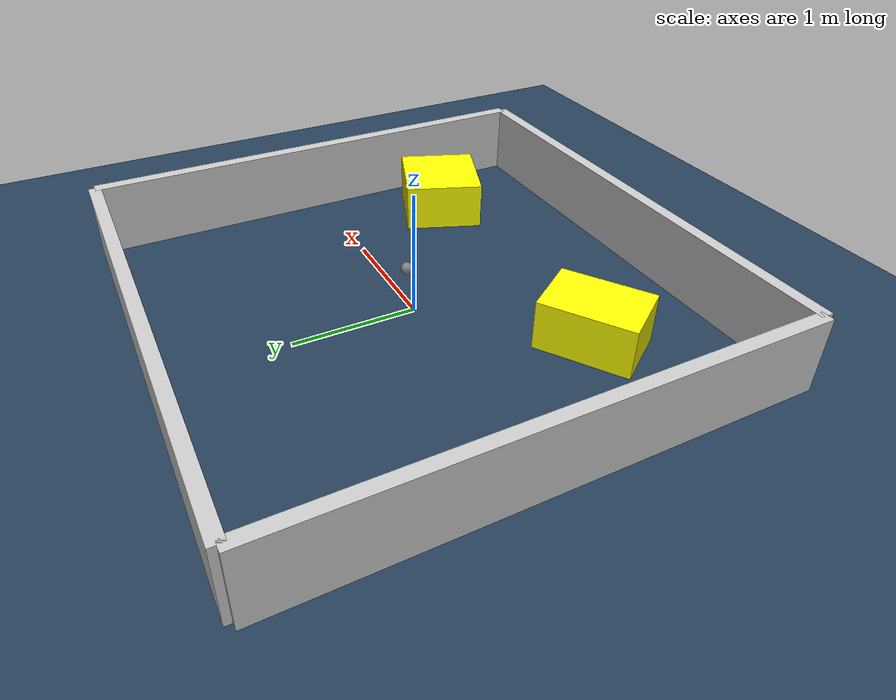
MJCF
<?xml version="1.0" ?>
<mujoco model="generated_environment">
  <option timestep="0.01" integrator="RK4" cone="elliptic"/>
  <default>
    <geom density="1"/>
  </default>
  <asset>
    <texture builtin="gradient" height="3072" rgb1="0.3 0.5 0.7" rgb2="0 0 0" type="skybox" width="512"/>
    <texture builtin="checker" height="300" mark="edge" markrgb="0.8 0.8 0.8" name="groundplane" rgb1="0.2 0.3 0.4" rgb2="0.1 0.2 0.3" type="2d" width="300"/>
    <material name="groundplane" reflectance="0.2" texrepeat="5 5" texture="groundplane" texuniform="true"/>
    <material name="robot" rgba="0.0 1.0 0.0 1"/>
  </asset>
  <worldbody>
    <light dir="0 0 -1" directional="true" pos="0 0 1.5"/>
    <geom condim="4" friction="1.0 0.005 0.001" material="groundplane" name="floor" size="0 0 0.05" type="plane"/>
    <body name="walls">
      <geom name="wall_1" condim="4" pos="-2.0 0.0 0.3" rgba="0.800000011920929 0.800000011920929 0.800000011920929 1.0" size="0.05 2.0 0.3" type="box"/>
      <geom name="wall_2" condim="4" pos="2.0 0.0 0.3" rgba="0.800000011920929 0.800000011920929 0.800000011920929 1.0" size="0.05 2.0 0.3" type="box"/>
      <geom name="wall_3" condim="4" pos="0.0 -2.0 0.3" rgba="0.800000011920929 0.800000011920929 0.800000011920929 1.0" size="2.0 0.05 0.3" type="box"/>
      <geom name="wall_4" condim="4" pos="0.0 2.0 0.3" rgba="0.800000011920929 0.800000011920929 0.800000011920929 1.0" size="2.0 0.05 0.3" type="box"/>
    </body>
    <body name="robot">
      <joint name="joint_x" type="slide" pos="0 0 0" axis="1 0 0"/>
      <joint name="joint_y" type="slide" pos="0 0 0" axis="0 1 0"/>
      <geom name="robot" type="sphere" pos="0.2798506348517962 -0.07843951180625708 0.2" size="0.05" mass="5." friction="1.0 0.005 0.0001" condim="4"/>
      <site name="sensor_ball"/>
    </body>
    <body name="obstacle_1_movable">
      <geom name="obstacle_1_movable" condim="4" pos="1.3701741018683429 -0.9559460756083582 0.2" euler="0 0 248.73369649006494" friction="1.0 0.005 0.001" rgba="1 1 0 1" size="0.33392733326845936 0.35139761342164955 0.2" type="box" mass="0.1"/>
      <joint type="free"/>
    </body>
    <body name="obstacle_2_movable">
      <geom name="obstacle_2_movable" condim="4" pos="-0.967758873481328 -0.9834531359388499 0.2" euler="0 0 304.0855239384035" friction="1.0 0.005 0.001" rgba="1 1 0 1" size="0.2588981359159783 0.3689952082052419 0.2" type="box" mass="0.1"/>
      <joint type="free"/>
    </body>
  </worldbody>
  <actuator>
    <motor name="actuator_x" joint="joint_x" gear="1" ctrlrange="-1 1"/>
    <motor name="actuator_y" joint="joint_y" gear="1" ctrlrange="-1 1"/>
  </actuator>
</mujoco>
